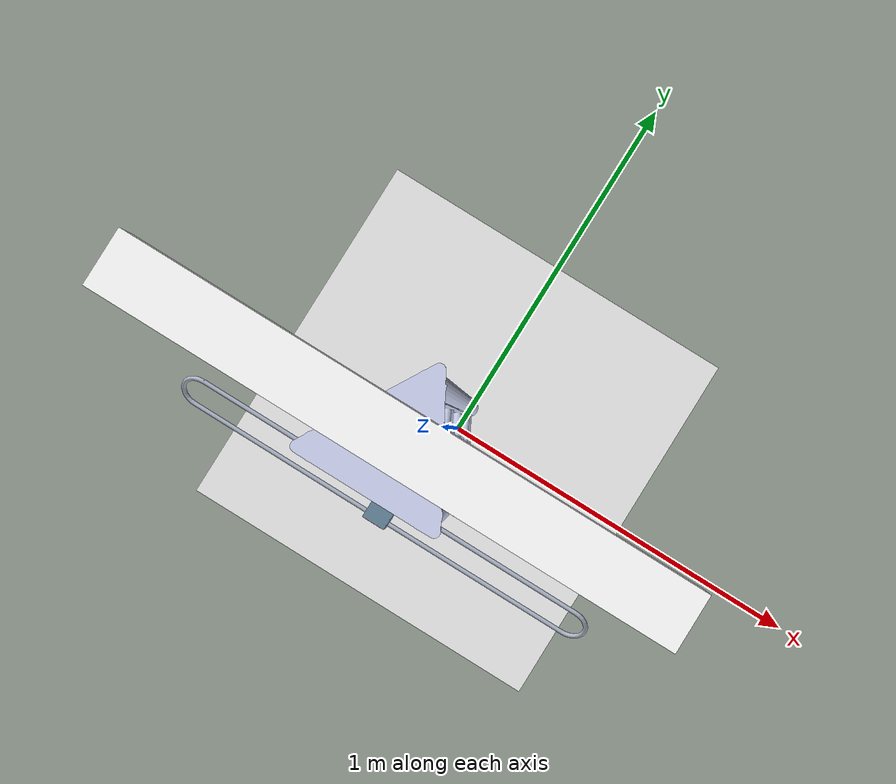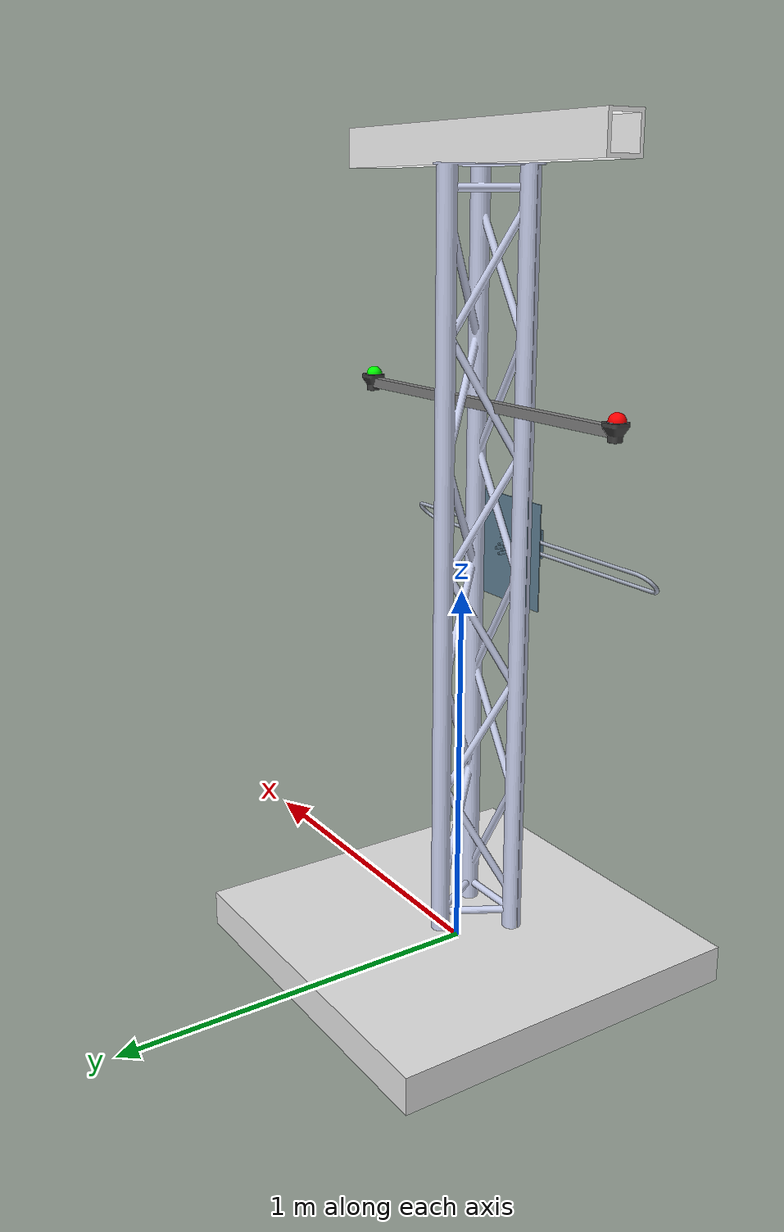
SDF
<sdf version='1.6'>
	<model name='hunter_killer_mast'>
		<link name='box_base'>
			<pose frame=''>0 0 0 0 -0 0</pose>
			<inertial>
				<pose frame=''>0 0 0 0 -0 0</pose>
				<mass>20</mass>
				<inertia>
					<ixx>4</ixx>
					<ixy>0</ixy>
					<ixz>0</ixz>
					<iyy>4</iyy>
					<iyz>0</iyz>
					<izz>4</izz>
				</inertia>
			</inertial>
			<collision name='box_base_collision'>
				<pose frame=''>0 0 0 0 -0 0</pose>
				<geometry>
					<box>
						<size>1 1 0.1</size>
					</box>
				</geometry>
				<surface>
					 <contact>
						<collide_bitmask>2</collide_bitmask>
						<ode>
							<max_vel>0</max_vel>
							<min_depth>0.001</min_depth>
						</ode>
					 </contact>
					 <bounce/>
					 <friction>
						 <ode>
							 <mu>1</mu>
							 <mu2>1</mu2>
						 </ode>
						 <torsional>
							 <ode/>
						 </torsional>
						 <ode/>
					 </friction>
				</surface>
			</collision>
			<visual name='box_base_visual'>
				<pose frame=''>0 0 0 0 -0 0</pose>
				<geometry>
					<box>
						<size>1 1 0.1</size>
					</box>
				</geometry>
				<material>
					<script>
						<name>ModelPreview_1::base::base_visual_MATERIAL_</name>
					</script>
					<ambient>0.4 0.4 0.4 1</ambient>
					<shader type='vertex'>
						<normal_map>__default__</normal_map>
					</shader>
					<diffuse>0.9 0.9 0.9 1</diffuse>
					<specular>0.2 0.2 0.2 1</specular>
					<emissive>0 0 0 1</emissive>
				</material>
			</visual>
		</link>

		<link name='base'>
			<pose frame=''>0 0 0.05 0 -0 0</pose>
			<inertial>
				<pose frame=''>-0.021807 0.298116 0.306153 0 -0 0</pose>
				<mass>26.6735</mass>
				<inertia>
					<ixx>2.29538</ixx>
					<ixy>-9.71572e-19</ixy>
					<ixz>-2.66211e-17</ixz>
					<iyy>4.58898</iyy>
					<iyz>0</iyz>
					<izz>2.29538</izz>
				</inertia>
			</inertial>
		</link>

		<joint name='roll_joint' type='revolute'>
			<child>base</child>
			<parent>box_base</parent>
			<axis>
				<xyz>1 0 0</xyz>
				<limit>
					<lower>-0.2</lower>
					<upper>0.2</upper>
					<effort>1000</effort>
					<velocity>0.5</velocity>
				</limit>
				<dynamics>
					<damping>10</damping>
					<friction>1</friction>
					<spring_reference>0</spring_reference>
					<spring_stiffness>0</spring_stiffness>
				</dynamics>
				<use_parent_model_frame>1</use_parent_model_frame>
			</axis>
		</joint>

		<link name='dummy_module'>
			<pose frame=''>0.0027 -0.18554 1.1 0 0 -1.5708</pose>
		</link>

		<joint name='dummy_joint' type='fixed'>
			<child>dummy_module</child>
			<parent>mast</parent>
		</joint>

		<link name='mast'>
			<pose frame=''>0 0 0.05 0 -0 0</pose>
			<inertial>
				<pose frame=''>-0.001482 -0.028214 0.755526 -3.14159 -1.0464 -1.0472</pose>
				<mass>4.50868</mass>
				<inertia>
					<ixx>0.278217</ixx>
					<ixy>-0.0121037</ixy>
					<ixz>0.369556</ixz>
					<iyy>0.959113</iyy>
					<iyz>0.0251943</iyz>
					<izz>0.786576</izz>
				</inertia>
			</inertial>
		 <collision name='mast_collision'>
				<pose frame=''>0 0.42 1.1 0 0 0</pose>
				<geometry>
					<box>
						<size>0.3 1.1 1.6</size>
					</box>
				</geometry>
				<surface>
					 <contact>
					 	<collide_bitmask>16</collide_bitmask>
						<ode>
							<max_vel>0</max_vel>
							<min_depth>0.00001</min_depth>
						</ode>
					 </contact>
					 <bounce/>
					 <friction>
						 <ode>
							 <mu>0</mu>
							 <mu2>0</mu2>
						 </ode>
						 <torsional>
							 <ode/>
						 </torsional>
						 <ode/>
					 </friction>
				</surface>
			</collision>

			<collision name='mast_fixed_joint_lump__blue_board_collision_2'>
				<pose frame=''>-0.01 -0.158 1.03 1.5708 -0 0</pose>
				<geometry>
					<mesh>
						<scale>1 0.5 30</scale>
						<uri>/home/student/students/harshil/iarc_ws/src/controls/hunter_killer_mast/meshes/blue_board.STL</uri>
					</mesh>
				</geometry>
				<surface>
					 <contact>
					 	<collide_bitmask>144</collide_bitmask>
						<ode>
							<max_vel>0</max_vel>
							<min_depth>0.001</min_depth>
						</ode>
					 </contact>
					 <bounce/>
					 <friction>
						 <ode>
							 <mu>0</mu>
							 <mu2>0</mu2>
						 </ode>
						 <torsional>
							 <ode/>
						 </torsional>
						 <ode/>
					 </friction>
				</surface>
			</collision>
			<collision name='mast_fixed_joint_lump__rod_supporter_collision_3'>
				<pose frame=''>-0.01 -0.13 1.05 1.5708 -0 0</pose>
				<geometry>
					<mesh>
						<scale>1 1 1</scale>
						<uri>/home/student/students/harshil/iarc_ws/src/controls/hunter_killer_mast/meshes/rod_supporter.STL</uri>
					</mesh>
				</geometry>
				<surface>
					 <contact>
					 	<collide_bitmask>112</collide_bitmask>
						<ode>
							<max_vel>0</max_vel>
							<min_depth>0.001</min_depth>
						</ode>
					 </contact>
					 <bounce/>
					 <friction>
						 <ode>
							 <mu>100</mu>
							 <mu2>100</mu2>
						 </ode>
						 <torsional>
							 <ode/>
						 </torsional>
						 <ode/>
					 </friction>
				</surface>
			</collision>
			<collision name='mast_fixed_joint_lump__guide_rods_collision_7'>
        <pose frame=''>-0.017 -0.238 1.058 -1.5708 -0 0</pose>
        <geometry>
          <mesh>
            <scale>0.001 0.00102 0.00102</scale>
            <uri>/home/student/students/harshil/iarc_ws/src/controls/hunter_killer_mast/meshes/rod_2.STL</uri>
          </mesh>
        </geometry>
        <surface>
           <contact>
            <collide_bitmask>104</collide_bitmask>
            <ode>
              <max_vel>0</max_vel>
              <min_depth>0.001</min_depth>
            </ode>
           </contact>
           <bounce/>
           <friction>
             <ode>
               <mu>0.85</mu>
               <mu2>0.85</mu2>
             </ode>
             <torsional>
               <ode/>
             </torsional>
             <ode/>
           </friction>
        </surface>
      </collision>
			<collision name='mast_fixed_joint_lump__navigation_pole_collision_8'>
				<pose frame=''>-0.508 -0.05 1.43 3.14159 1.57079 3.14159</pose>
				<geometry>
					<mesh>
						<scale>1 1 1</scale>
						<uri>/home/student/students/harshil/iarc_ws/src/controls/hunter_killer_mast/meshes/navigation_pole.STL</uri>
					</mesh>
				</geometry>
			</collision>
			<collision name='mast_fixed_joint_lump__ledport_collision_9'>
				<pose frame=''>0.48 -0.046 1.48 0 -0 0</pose>
				<geometry>
					<mesh>
						<scale>1 1 1</scale>
						<uri>/home/student/students/harshil/iarc_ws/src/controls/hunter_killer_mast/meshes/base_led.STL</uri>
					</mesh>
				</geometry>
			</collision>
			<collision name='mast_fixed_joint_lump__ledstarboard_collision_10'>
				<pose frame=''>-0.52 -0.046 1.48 0 -0 0</pose>
				<geometry>
					<mesh>
						<scale>1 1 1</scale>
						<uri>/home/student/students/harshil/iarc_ws/src/controls/hunter_killer_mast/meshes/base_led.STL</uri>
					</mesh>
				</geometry>
			</collision>
			<visual name='mast_visual'>
        <pose frame=''>-0.237500 0.175 0.0 1.570800 0.0 0.0</pose>
        <geometry>
          <mesh>
            <scale>1 1 1</scale>
            <uri>/home/student/students/harshil/iarc_ws/src/controls/hunter_killer_mast/meshes/mast_pole.dae</uri>
          </mesh>
        </geometry>
      </visual>
      <visual name='mast_fixed_joint_lump__blue_board_visual_1'>
        <pose frame=''>-0.01 -0.13 1.05 1.5708 -0 0</pose>
        <geometry>
          <mesh>
            <scale>1 1 1</scale>
            <uri>/home/student/students/harshil/iarc_ws/src/controls/hunter_killer_mast/meshes/blue_board.dae</uri>
          </mesh>
        </geometry>
      </visual>

      <visual name='mast_fixed_joint_lump__name_plate_visual_2'>
        <pose frame=''>-0.01 -0.132794 1.13382 -4e-06 3.14 3.14</pose>
        <geometry>
          <mesh>
            <scale>1 1 1</scale>
            <uri>/home/student/students/harshil/iarc_ws/src/controls/hunter_killer_mast/meshes/name_plate.dae</uri>
          </mesh>
        </geometry>
      </visual>
      <visual name='mast_fixed_joint_lump__rod_supporter_visual_3'>
        <pose frame=''>-0.01 -0.13 1.05 1.5708 -0 0</pose>
        <geometry>
          <mesh>
            <scale>1 1 1</scale>
            <uri>/home/student/students/harshil/iarc_ws/src/controls/hunter_killer_mast/meshes/rod_holder.dae</uri>
          </mesh>
        </geometry>
      </visual>
      <visual name='mast_fixed_joint_lump__guide_rods_visual_7'>
        <pose frame=''>-0.2417 0.20 -0.097600 1.5708 -0 0</pose>
        <geometry>
          <mesh>
            <scale>1 1 1</scale>
            <uri>/home/student/students/harshil/iarc_ws/src/controls/hunter_killer_mast/meshes/guide_rods.dae</uri>
          </mesh>
        </geometry>
      </visual>
      <visual name='mast_fixed_joint_lump__navigation_pole_visual_8'>
        <pose frame=''>-0.508 -0.05 1.43 3.14159 1.57079 3.14159</pose>
        <geometry>
          <mesh>
            <scale>1 1 1</scale>
            <uri>/home/student/students/harshil/iarc_ws/src/controls/hunter_killer_mast/meshes/navigation_pole.dae</uri>
          </mesh>
        </geometry>
      </visual>
      <visual name='mast_fixed_joint_lump__ledport_visual_9'>
        <pose frame=''>-0.50 -0.046 1.4075 1.5708 -0 0</pose>
        <geometry>
          <mesh>
            <scale>1 1 1</scale>
            <uri>/home/student/students/harshil/iarc_ws/src/controls/hunter_killer_mast/meshes/led_holder.dae</uri>
          </mesh>
        </geometry>
      </visual>
      <visual name='mast_fixed_joint_lump__ledstarboard_visual_10'>
        <pose frame=''>0.5 -0.046 1.4075 1.5708 -0 0</pose>
        <geometry>
          <mesh>
            <scale>1 1 1</scale>
            <uri>/home/student/students/harshil/iarc_ws/src/controls/hunter_killer_mast/meshes/led_holder.dae</uri>
          </mesh>
        </geometry>
      </visual>
			<sensor name='proxy' type='ray'>
				<update_rate>50</update_rate>
				<ray>
					<scan>
						<horizontal>
							<samples>1</samples>
							<resolution>1</resolution>
							<min_angle>-0.01</min_angle>
							<max_angle>0.01</max_angle>
						</horizontal>
						<vertical>
							<samples>1</samples>
							<resolution>1</resolution>
							<min_angle>-0.01</min_angle>
							<max_angle>0.01</max_angle>
						</vertical>
					</scan>
					<range>
						<min>0.01</min>
						<max>3.75</max>
						<resolution>0.02</resolution>
					</range>
				</ray>
				<plugin name='gazebo_ros_range' filename='libgazebo_ros_range.so'>
					<gaussianNoise>0.005</gaussianNoise>
					<alwaysOn>1</alwaysOn>
					<updateRate>5</updateRate>
					<topicName>/hunter_killer_mast/proxy_sensor</topicName>
					<frameName>buax</frameName>
					<visualize>1</visualize>
					<radiation>infrared</radiation>
					<fov>0.02</fov>
				</plugin>
				<pose frame=''>-0.01 -0.16 1.08 1.5708 -0 -1.5708</pose>
			</sensor>
		</link>

		<link name='communication_module'>
			<pose frame=''>0.0027 -0.18554 1.1 0.053011 3e-06 -1.5708</pose>
			<inertial>
				<pose frame=''>0.014039 -0.012654 0.001175 0 -0 0</pose>
				<mass>0.354025</mass>
				<inertia>
          <ixx>0.0122297</ixx>
          <ixy>5.11552e-06</ixy>
          <ixz>9.62719e-05</ixz>
          <iyy>0.000424853</iyy>
          <iyz>0.000628333</iyz>
          <izz>0.012215</izz>
        </inertia>
			</inertial>
			<collision name='communication_module_collision'>
        <pose frame=''>-0.025 -0.497 -0.014 1.570796 0.05 1.570796</pose>
        <geometry>
          <mesh>
            <scale>0.001 0.001 0.001</scale>
            <uri>/home/student/students/harshil/iarc_ws/src/controls/hunter_killer_mast/meshes/module_4.STL</uri>
          </mesh>
        </geometry>
        <surface>
           <contact>
            <collide_bitmask>40</collide_bitmask>
            <ode>
              <max_vel>0</max_vel>
              <min_depth>0.001</min_depth>
            </ode>
           </contact>
           <bounce/>
           <friction>
             <ode>
               <mu>0.85</mu>
               <mu2>0.85</mu2>
             </ode>
             <torsional>
               <ode/>
             </torsional>
             <ode/>
           </friction>
        </surface>
      </collision>
			<visual name='communication_module_visual'>
        <pose frame=''>0.0125 -0.0125 0 -0.05 -0 0</pose>
        <geometry>
          <mesh>
            <scale>1 1 1</scale>
            <uri>/home/student/students/harshil/iarc_ws/src/controls/hunter_killer_mast/meshes/communication_module.dae</uri>
          </mesh>
        </geometry>
      </visual>
      <visual name='communication_module_fixed_joint_lump__antena_visual_1'>
        <pose frame=''>0.01604 0.43133 -0.020359 3.0885 -0 0</pose>
        <geometry>
          <mesh>
            <scale>1 1 1</scale>
            <uri>/home/student/students/harshil/iarc_ws/src/controls/hunter_killer_mast/meshes/antenna.dae</uri>
          </mesh>
        </geometry>
      </visual>
      <visual name='communication_module_fixed_joint_lump__exposed_plate_visual_2'>
        <pose frame=''>0.0516 -0.012682 0.000673 0 1.5177 -1.5708</pose>
        <geometry>
          <mesh>
            <scale>1 1 1</scale>
            <uri>/home/student/students/harshil/iarc_ws/src/controls/hunter_killer_mast/meshes/exposed_plate.dae</uri>
          </mesh>
        </geometry>
        <material>
			<shader type='vertex'>
				<normal_map>_default_</normal_map>
			</shader>
			<script>
				<name>ModelPreview_1::base::base_fixed_joint_lump_antena_visual_6_MATERIAL</name>
			</script>
			<ambient>1 0 0 1</ambient>
			<diffuse>1 0 0 1</diffuse>
			<specular>1 0 0 1</specular>
			<emissive>1 0 0 1</emissive>
		</material>
      </visual>
			<self_collide>1</self_collide>
		</link>

		#Iss joint ko gayab bhi kar sakte ho ya fixed bhi rakh sakte ho..
		#Agar gayab karna hoga toh comment out karna ye snippet udaana mat

		<joint name='pitch_joint' type='revolute'>
			<child>mast</child>
			<parent>base</parent>
			<axis>
				<xyz>0 1 0</xyz>
				<limit>
					<lower>-0.2</lower>
					<upper>0.2</upper>
					<effort>1000</effort>
					<velocity>0.5</velocity>
				</limit>
				<dynamics>
					<damping>10</damping>
					<friction>1</friction>
					<spring_reference>0</spring_reference>
					<spring_stiffness>0</spring_stiffness>
				</dynamics>
				<use_parent_model_frame>1</use_parent_model_frame>
			</axis>
		</joint>

		<link name='hemi1l'>
			<pose frame=''>0.499003 -0.046 1.5028 1.5708 -0 -1.4136</pose>
			<inertial>
				<pose frame=''>0.003137 0 0.000497 0 -0 0</pose>
				<mass>0.03418</mass>
				<inertia>
					<ixx>0.000356543</ixx>
					<ixy>6.61061e-10</ixy>
					<ixz>1.58901e-15</ixz>
					<iyy>0.00054688</iyy>
					<iyz>2.2761e-10</iyz>
					<izz>0.000356543</izz>
				</inertia>
			</inertial>
			<collision name='hemi1l_collision'>
				<pose frame=''>0 0 0 0 -0 0</pose>
				<geometry>
					<mesh>
						<scale>1 1 1</scale>
						<uri>/home/student/students/harshil/iarc_ws/src/controls/hunter_killer_mast/meshes/hemi1.STL</uri>
					</mesh>
				</geometry>
				<surface>
					<contact>
						<ode/>
					</contact>
					<friction>
						<ode/>
					</friction>
				</surface>
			</collision>
			<collision name='hemi1l_fixed_joint_lump__hemi2l_collision_1'>
				<pose frame=''>0.003137 0 0.000497 -3.14159 1.2392 -0</pose>
				<geometry>
					<mesh>
						<scale>1 1 1</scale>
						<uri>/home/student/students/harshil/iarc_ws/src/controls/hunter_killer_mast/meshes/hemi2.STL</uri>
					</mesh>
				</geometry>
			</collision>
			<visual name='hemi1l_visual'>
		        <pose frame=''>0.003137 0 0.000497 -1.570800 -0 0</pose>
		        <geometry>
		          <mesh>
		            <scale>1 1 1</scale>
		            <uri>/home/student/students/harshil/iarc_ws/src/controls/hunter_killer_mast/meshes/no_led.dae</uri>
		          </mesh>
		        </geometry>
		      </visual>
		      <visual name='hemi1l_fixed_joint_lump__hemi2l_visual_1'>
		        <pose frame=''>0.003137 0 0.000497 1.5708 0 -0</pose>
		        <geometry>
		          <mesh>
		            <scale>1 1 1</scale>
		            <uri>/home/student/students/harshil/iarc_ws/src/controls/hunter_killer_mast/meshes/green_led.dae</uri>
		          </mesh>
		        </geometry>
		      </visual>
			<gravity>1</gravity>
			<velocity_decay/>
		</link>

		<joint name='hemi1l_joint' type='revolute'>
			<child>hemi1l</child>
			<parent>mast</parent>
			<axis>
				<xyz>0.015655 -0.098767 0</xyz>
				<limit>
					<lower>0</lower>
					<upper>3.1416</upper>
					<effort>10</effort>
					<velocity>10</velocity>
				</limit>
				<dynamics>
					<spring_reference>0</spring_reference>
					<spring_stiffness>0</spring_stiffness>
				</dynamics>
				<use_parent_model_frame>1</use_parent_model_frame>
			</axis>
		</joint>

		<link name='hemi1r'>
			<pose frame=''>-0.500997 -0.046 1.5028 1.5708 -0 -1.4136</pose>
			<inertial>
				<pose frame=''>0.003137 0 0.000497 0 -0 0</pose>
				<mass>0.03418</mass>
				<inertia>
					<ixx>0.000356543</ixx>
					<ixy>6.61061e-10</ixy>
					<ixz>1.58901e-15</ixz>
					<iyy>0.00054688</iyy>
					<iyz>2.2761e-10</iyz>
					<izz>0.000356543</izz>
				</inertia>
			</inertial>
			<collision name='hemi1r_collision'>
				<pose frame=''>0 0 0 0 -0 0</pose>
				<geometry>
					<mesh>
						<scale>1 1 1</scale>
						<uri>/home/student/students/harshil/iarc_ws/src/controls/hunter_killer_mast/meshes/hemi1.STL</uri>
					</mesh>
				</geometry>
				<surface>
					<contact>
						<ode/>
					</contact>
					<friction>
						<ode/>
					</friction>
				</surface>
			</collision>
			<collision name='hemi1r_fixed_joint_lump__hemi2r_collision_1'>
				<pose frame=''>0.003137 0 0.000497 -3.14159 1.2392 -0</pose>
				<geometry>
					<mesh>
						<scale>1 1 1</scale>
						<uri>/home/student/students/harshil/iarc_ws/src/controls/hunter_killer_mast/meshes/hemi2.STL</uri>
					</mesh>
				</geometry>
			</collision>
			<visual name='hemi1r_visual'>
        <pose frame=''>0.003137 0 0.000497 -1.5708 -0 0</pose>
        <geometry>
          <mesh>
            <scale>1 1 1</scale>
            <uri>/home/student/students/harshil/iarc_ws/src/controls/hunter_killer_mast/meshes/no_led.dae</uri>
          </mesh>
        </geometry>
      </visual>
      <visual name='hemi1r_fixed_joint_lump__hemi2r_visual_1'>
        <pose frame=''>0.003137 0 0.000497 1.5708 0 -0</pose>
        <geometry>
          <mesh>
            <scale>1 1 1</scale>
            <uri>/home/student/students/harshil/iarc_ws/src/controls/hunter_killer_mast/meshes/red_led.dae</uri>
          </mesh>
        </geometry>

      </visual>
			<gravity>1</gravity>
			<velocity_decay/>
		</link>
		<joint name='hemi1r_joint' type='revolute'>
			<child>hemi1r</child>
			<parent>mast</parent>
			<axis>
				<xyz>0.015655 -0.098767 0</xyz>
				<limit>
					<lower>0</lower>
					<upper>3.1416</upper>
					<effort>10</effort>
					<velocity>10</velocity>
				</limit>
				<dynamics>
					<spring_reference>0</spring_reference>
					<spring_stiffness>0</spring_stiffness>
				</dynamics>
				<use_parent_model_frame>1</use_parent_model_frame>
			</axis>
		</joint>
		<link name='pankha'>
			<pose frame=''>0 -0.03 2.1 0 -0 0</pose>
			<inertial>
				<pose frame=''>0 0 -0 0 -0 0</pose>
				<mass>3.73075</mass>
				<inertia>
					<ixx>0.0101974</ixx>
					<ixy>0</ixy>
					<ixz>8.84709e-18</ixz>
					<iyy>0.326023</iyy>
					<iyz>5.60136e-20</iyz>
					<izz>0.326023</izz>
				</inertia>
			</inertial>
			<collision name='pankha_collision'>
				<pose frame=''>-0.508 0 0 0 -0 0</pose>
				<geometry>
					<mesh>
						<scale>1 1 1</scale>
						<uri>/home/student/students/harshil/iarc_ws/src/controls/hunter_killer_mast/meshes/pankha.STL</uri>
					</mesh>
				</geometry>
			</collision>
			<visual name='pankha_visual'>
        <pose frame=''>-0.508 0 0 0 -0 0</pose>
        <geometry>
          <mesh>
            <scale>1 1 1</scale>
            <uri>/home/student/students/harshil/iarc_ws/src/controls/hunter_killer_mast/meshes/pankha.dae</uri>
          </mesh>
        </geometry>
      </visual>
		</link>

		<joint name='pankha_joint' type='revolute'>
			<child>pankha</child>
			<parent>mast</parent>
			<axis>
				<xyz>0 0 1</xyz>
				<limit>
					<lower>-1e+11</lower>
					<upper>1e+11</upper>
					<effort>1</effort>
					<velocity>1</velocity>
				</limit>
				<dynamics>
					<spring_reference>0</spring_reference>
					<spring_stiffness>0</spring_stiffness>
				</dynamics>
				<use_parent_model_frame>1</use_parent_model_frame>
			</axis>
		</joint>

		<static>0</static>
		<plugin name='gazebo_ros_control' filename='libgazebo_ros_control.so'>
			<robotNamespace>/hunter_killer_mast</robotNamespace>
		</plugin>
	</model>
</sdf>
